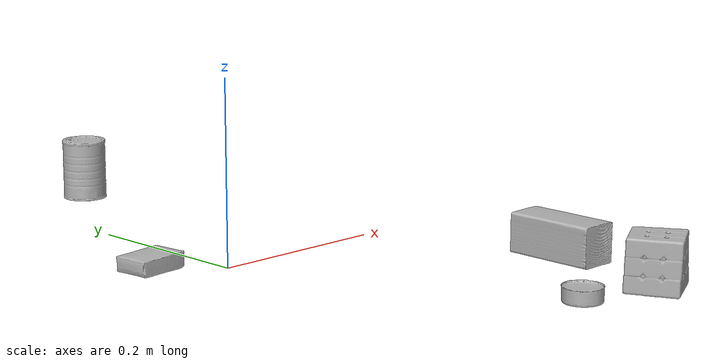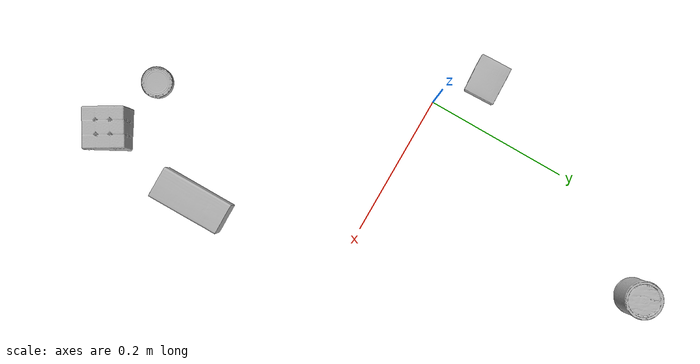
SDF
<sdf version="1.4">
  <world name="default">
    <light name="light1" type="point">
      <pose>0 0 1 0 0 0</pose>
      <diffuse>3 3 3 1</diffuse>
      <specular>3 3 3 1</specular>
    </light>
    <light name="light2" type="point">
      <pose>0 0.5 2 0 0 0</pose>
      <diffuse>1 1 1 1</diffuse>
      <specular>1 1 1 1</specular>
    </light>
    <light name="light3" type="point">
      <pose>0 0.5 2 0 0 0</pose>
      <diffuse>3 3 3 1</diffuse>
      <specular>3 3 3 1</specular>
    </light>
    <scene>
      <ambient>0.7 0.7 0.7</ambient>
    </scene>
    <model name="box1">
      <link name="link_box1">
        <collision name="default">
          <geometry>
            <mesh>
              <uri>model://rubiks_cube/collision_meshes/collision.obj</uri>
              <scale>1.0 1.0 1.0</scale>
            </mesh>
          </geometry>
          <surface>
            <friction>
              <ode>
                <mu>0.5</mu>
                <mu2>0.5</mu2>
              </ode>
            </friction>
          <contact>
        <ode>
            <max_vel>0</max_vel>
            <min_depth>0.0001</min_depth>
            <kp>1e8</kp>
        </ode>
    </contact></surface>
        </collision>
        <visual name="default">
          <geometry>
            <mesh>
              <uri>model://rubiks_cube/visual_meshes/visual.dae</uri>
              <scale>1.0 1.0 1.0</scale>
            </mesh>
          </geometry>
        </visual>
        <inertial>
          <mass>0.19534927606582642</mass>
          <pose>2.6721041649580002e-05 5.256967051536776e-05 -7.264316082000732e-06 -0.05467254413799041 -0.09813991388320625 -0.034457004790174134</pose>
          <inertia>
            <ixx>0.0001079436</ixx>
            <iyy>0.00010744019</iyy>
            <izz>0.000108838074</izz>
            <ixy>0</ixy>
            <ixz>0</ixz>
            <iyz>0</iyz>
          </inertia>
        </inertial>
      </link>
      <pose>0.2502736449241638 -0.3613619804382324 0.028678979724645615 -3.1716741538350146e-06 -1.3094143197479488e-06 0.5232641920856145</pose>
    </model>
    <model name="box2">
      <link name="link_box2">
        <collision name="default">
          <geometry>
            <mesh>
              <uri>model://pudding_box/collision_meshes/collision.obj</uri>
              <scale>0.5 0.5 0.5</scale>
            </mesh>
          </geometry>
          <surface>
            <friction>
              <ode>
                <mu>0.5</mu>
                <mu2>0.5</mu2>
              </ode>
            </friction>
          <contact>
        <ode>
            <max_vel>0</max_vel>
            <min_depth>0.0001</min_depth>
            <kp>1e8</kp>
        </ode>
    </contact></surface>
        </collision>
        <visual name="default">
          <geometry>
            <mesh>
              <uri>model://pudding_box/visual_meshes/visual.dae</uri>
              <scale>0.5 0.5 0.5</scale>
            </mesh>
          </geometry>
        </visual>
        <inertial>
          <mass>0.04727919027209282</mass>
          <pose>0.00024474109522998333 0.00040339428232982755 -0.0002594413817860186 0.0052131013240192415 -0.0066037977924420415 0.020079828889419827</pose>
          <inertia>
            <ixx>1.3361672e-05</ixx>
            <iyy>8.9898285e-06</iyy>
            <izz>1.9732002e-05</izz>
            <ixy>0</ixy>
            <ixz>0</ixz>
            <iyz>0</iyz>
          </inertia>
        </inertial>
      </link>
      <pose>-0.06257223337888718 0.04904983565211296 0.009862900711596012 0.022348557154227875 -0.011391677177321613 -1.5384048320640382</pose>
    </model>
    <model name="box3">
      <link name="link_box3">
        <collision name="default">
          <geometry>
            <mesh>
              <uri>model://wood_block/collision_meshes/collision.obj</uri>
              <scale>0.5 0.5 0.5</scale>
            </mesh>
          </geometry>
          <surface>
            <friction>
              <ode>
                <mu>0.5</mu>
                <mu2>0.5</mu2>
              </ode>
            </friction>
          <contact>
        <ode>
            <max_vel>0</max_vel>
            <min_depth>0.0001</min_depth>
            <kp>1e8</kp>
        </ode>
    </contact></surface>
        </collision>
        <visual name="default">
          <geometry>
            <mesh>
              <uri>model://wood_block/visual_meshes/visual.dae</uri>
              <scale>0.5 0.5 0.5</scale>
            </mesh>
          </geometry>
        </visual>
        <inertial>
          <mass>0.3041442632675171</mass>
          <pose>-2.9066577553749084e-06 -0.000285404734313488 0.00013204291462898254 -0.05220823380361383 -0.0051926957206686235 -0.0068613778665259926</pose>
          <inertia>
            <ixx>0.00010174775</ixx>
            <iyy>0.0003214212</iyy>
            <izz>0.0003202189</izz>
            <ixy>0</ixy>
            <ixz>0</ixz>
            <iyz>0</iyz>
          </inertia>
        </inertial>
      </link>
      <pose>0.2782098650932312 -0.2161845862865448 0.02262926660478115 -0.005208537672453156 0.00571875133439689 -1.5689018223557878</pose>
    </model>
    <model name="can1">
      <link name="link_can1">
        <collision name="default">
          <geometry>
            <mesh>
              <uri>model://master_chef_can/collision_meshes/collision.obj</uri>
              <scale>0.5 0.5 0.5</scale>
            </mesh>
          </geometry>
          <surface>
            <friction>
              <ode>
                <mu>0.5</mu>
                <mu2>0.5</mu2>
              </ode>
            </friction>
          <contact>
        <ode>
            <max_vel>0</max_vel>
            <min_depth>0.0001</min_depth>
            <kp>1e8</kp>
        </ode>
    </contact></surface>
        </collision>
        <visual name="default">
          <geometry>
            <mesh>
              <uri>model://master_chef_can/visual_meshes/visual.dae</uri>
              <scale>0.5 0.5 0.5</scale>
            </mesh>
          </geometry>
        </visual>
        <inertial>
          <mass>0.18719419836997986</mass>
          <pose>-4.661963976104744e-05 1.3926856468060578e-07 -5.0798327720258385e-05 -0.0017995099067415357 0.0006479319374111454 -0.6102582770449616</pose>
          <inertia>
            <ixx>0.0001098703</ixx>
            <iyy>0.00010906167</iyy>
            <izz>6.071174e-05</izz>
            <ixy>0</ixy>
            <ixz>0</ixz>
            <iyz>0</iyz>
          </inertia>
        </inertial>
      </link>
      <pose>0.09405885636806488 0.36796239018440247 0.03530199080705643 -1.5087651869888072e-06 -1.136134556716161e-06 2.5334183203321086</pose>
    </model>
    <model name="can2">
      <link name="link_can2">
        <collision name="default">
          <geometry>
            <mesh>
              <uri>model://tuna_fish_can/collision_meshes/collision.obj</uri>
              <scale>0.5 0.5 0.5</scale>
            </mesh>
          </geometry>
          <surface>
            <friction>
              <ode>
                <mu>0.5</mu>
                <mu2>0.5</mu2>
              </ode>
            </friction>
          <contact>
        <ode>
            <max_vel>0</max_vel>
            <min_depth>0.0001</min_depth>
            <kp>1e8</kp>
        </ode>
    </contact></surface>
        </collision>
        <visual name="default">
          <geometry>
            <mesh>
              <uri>model://tuna_fish_can/visual_meshes/visual.dae</uri>
              <scale>0.5 0.5 0.5</scale>
            </mesh>
          </geometry>
        </visual>
        <inertial>
          <mass>0.011327341198921204</mass>
          <pose>-2.0361354472697712e-05 -7.256336175487377e-06 -0.0005269023822620511 -0.001794480782384504 0.00017159763230480823 0.24052991368062646</pose>
          <inertia>
            <ixx>1.5314733e-06</ixx>
            <iyy>1.52509e-06</iyy>
            <izz>2.6205691e-06</izz>
            <ixy>0</ixy>
            <ixz>0</ixz>
            <iyz>0</iyz>
          </inertia>
        </inertial>
      </link>
      <pose>0.16349929571151733 -0.33785897493362427 0.008520000614225864 1.7508427093910087e-08 5.560381416957201e-10 -0.8928588569957122</pose>
    </model>
  <physics type="ode">
      <max_contacts>50</max_contacts>
      <ode>
        <solver>
          <type>quick</type>
          <iters>75</iters>
        </solver>
        <constraints>
          <contact_max_correcting_vel>0</contact_max_correcting_vel>
          <contact_surface_layer>0</contact_surface_layer>
        </constraints>
      </ode>
    </physics></world>
</sdf>
